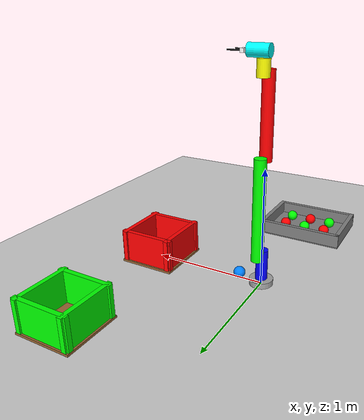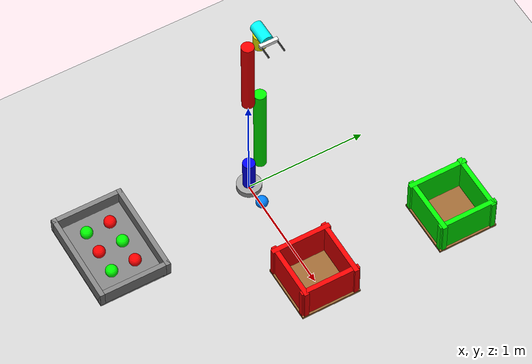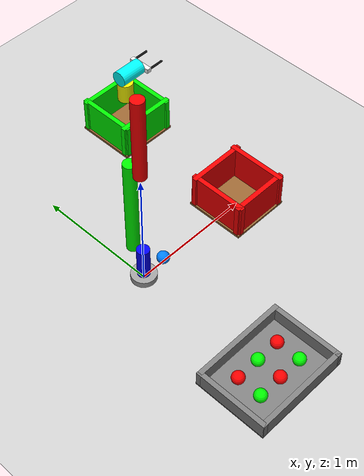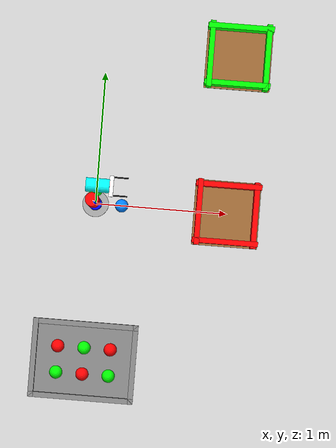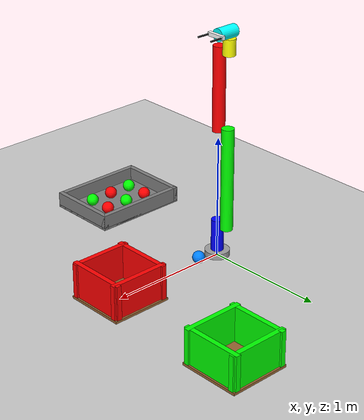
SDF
<sdf version='1.9'>
  <world name='pick_and_place_world'>
    <physics name='1ms' type='ignored'>
      <max_step_size>0.001</max_step_size>
      <real_time_factor>1</real_time_factor>
      <real_time_update_rate>1000</real_time_update_rate>
    </physics>
    <plugin name='gz::sim::systems::Physics' filename='ignition-gazebo-physics-system'/>
    <plugin name='gz::sim::systems::UserCommands' filename='ignition-gazebo-user-commands-system'/>
    <plugin name='gz::sim::systems::SceneBroadcaster' filename='ignition-gazebo-scene-broadcaster-system'/>
    <plugin name='gz::sim::systems::Contact' filename='ignition-gazebo-contact-system'/>
    <gravity>0 0 -9.8</gravity>
    <magnetic_field>6e-06 2.3e-05 -4.2e-05</magnetic_field>
    <atmosphere type='adiabatic'/>
    <scene>
      <ambient>0.4 0.4 0.4 1</ambient>
      <background>0.7 0.7 0.7 1</background>
      <shadows>true</shadows>
    </scene>

    <model name='ground_plane'>
      <static>true</static>
      <link name='link'>
        <collision name='collision'>
          <geometry>
            <plane>
              <normal>0 0 1</normal>
              <size>100 100</size>
            </plane>
          </geometry>
          <surface>
            <friction>
              <ode/>
            </friction>
            <bounce/>
            <contact/>
          </surface>
        </collision>
        <visual name='visual'>
          <geometry>
            <plane>
              <normal>0 0 1</normal>
              <size>100 100</size>
            </plane>
          </geometry>
          <material>
            <ambient>0.8 0.8 0.8 1</ambient>
            <diffuse>0.8 0.8 0.8 1</diffuse>
            <specular>0.8 0.8 0.8 1</specular>
          </material>
        </visual>
        <pose>0 0 0 0 -0 0</pose>
        <inertial>
          <pose>0 0 0 0 -0 0</pose>
          <mass>1</mass>
          <inertia>
            <ixx>1</ixx>
            <ixy>0</ixy>
            <ixz>0</ixz>
            <iyy>1</iyy>
            <iyz>0</iyz>
            <izz>1</izz>
          </inertia>
        </inertial>
        <enable_wind>false</enable_wind>
      </link>
      <pose>0 0 0 0 -0 0</pose>
      <self_collide>false</self_collide>
    </model>

    <!-- Hollow box 1 (bin) for pick-and-place -->
    <model name="bin1">
      <static>true</static>
      <!-- Base link (contains floor + walls as separate visuals/collisions) -->
      <link name="bin_link1">
        <!-- Floor -->
        <collision name="floor_collision1">
          <pose>0 0 0.01 0 0 0</pose> <!-- floor sits at z=0.01 (half of floor_thickness) -->
          <geometry>
            <box>
              <size>0.5 0.5 0.02</size> <!-- floor_thickness = 0.02 m -->
            </box>
          </geometry>
        </collision>
        <visual name="floor_visual1">
          <pose>0 0 0.01 0 0 0</pose>
          <geometry><box><size>0.5 0.5 0.02</size></box></geometry>
          <material><ambient>0.6 0.4 0.2 1</ambient><diffuse>0.6 0.4 0.2 1</diffuse></material>
        </visual>

        <!-- Walls: front, back, left, right -->
        <!-- NOTE: wall_thickness = 0.02 m, wall_height = 0.28 m (so internal height ~0.26 m) -->
        <!-- Front wall (+x direction) -->
        <collision name="wall_front_collision1">
          <pose>0.215 0 0.16 0 0 0</pose> <!-- halfX - thickness/2 = 0.25 - 0.035 => ~0.215 -->
          <geometry>
            <box>
              <size>0.04 0.5 0.28</size> <!-- thickness x depth x height -->
            </box>
          </geometry>
        </collision>
        <visual name="wall_front_visual1">
          <pose>0.215 0 0.16 0 0 0</pose>
          <geometry><box><size>0.04 0.5 0.28</size></box></geometry>
          <material><ambient>0 1 0 1</ambient><diffuse>0 1 0 1</diffuse></material>
        </visual>

        <!-- Back wall (-x direction) -->
        <collision name="wall_back_collision1">
          <pose>-0.215 0 0.16 0 0 0</pose>
          <geometry>
            <box><size>0.04 0.5 0.28</size></box>
          </geometry>
        </collision>
        <visual name="wall_back_visual1">
          <pose>-0.215 0 0.16 0 0 0</pose>
          <geometry><box><size>0.04 0.5 0.28</size></box></geometry>
          <material><ambient>0 1 0 1</ambient><diffuse>0 1 0 1</diffuse></material>
        </visual>

        <!-- Left wall (+y) -->
        <collision name="wall_left_collision1">
          <pose>0 0.215 0.16 0 0 0</pose>
          <geometry>
            <box><size>0.5 0.04 0.28</size></box>
          </geometry>
        </collision>
        <visual name="wall_left_visual1">
          <pose>0 0.215 0.16 0 0 0</pose>
          <geometry><box><size>0.5 0.04 0.28</size></box></geometry>
          <material><ambient>0 1 0 1</ambient><diffuse>0 1 0 1</diffuse></material>
        </visual>

        <!-- Right wall (-y) -->
        <collision name="wall_right_collision1">
          <pose>0 -0.215 0.16 0 0 0</pose>
          <geometry>
            <box><size>0.5 0.04 0.28</size></box>
          </geometry>
        </collision>
        <visual name="wall_right_visual1">
          <pose>0 -0.215 0.16 0 0 0</pose>
          <geometry><box><size>0.5 0.04 0.28</size></box></geometry>
          <material><ambient>0 1 0 1</ambient><diffuse>0 1 0 1</diffuse></material>
        </visual>

        <!-- recommended contact surface parameters (optional tweak) -->
        <surface>
          <friction>
            <ode/>
          </friction>
          <bounce/>
          <contact/>
        </surface>
      </link>

      <!-- Place the whole bin closer to the robot -->
      <pose>1.0 1.2 0 0 0 0</pose> <!-- x y z roll pitch yaw (meters, radians) -->
    </model>

    <!-- Hollow box 2 (bin) for pick-and-place -->
    <model name="bin2">
      <static>true</static>
      <!-- Base link (contains floor + walls as separate visuals/collisions) -->
      <link name="bin_link2">
        <!-- Floor -->
        <collision name="floor_collision2">
          <pose>0 0 0.01 0 0 0</pose> <!-- floor sits at z=0.01 (half of floor_thickness) -->
          <geometry>
            <box>
              <size>0.5 0.5 0.02</size> <!-- floor_thickness = 0.02 m -->
            </box>
          </geometry>
        </collision>
        <visual name="floor_visual2">
          <pose>0 0 0.01 0 0 0</pose>
          <geometry><box><size>0.5 0.5 0.02</size></box></geometry>
          <material><ambient>0.6 0.4 0.2 1</ambient><diffuse>0.6 0.4 0.2 1</diffuse></material>
        </visual>

        <!-- Walls: front, back, left, right -->
        <!-- NOTE: wall_thickness = 0.02 m, wall_height = 0.28 m (so internal height ~0.26 m) -->
        <!-- Front wall (+x direction) -->
        <collision name="wall_front_collision2">
          <pose>0.215 0 0.16 0 0 0</pose> <!-- halfX - thickness/2 = 0.25 - 0.035 => ~0.215 -->
          <geometry>
            <box>
              <size>0.04 0.5 0.28</size> <!-- thickness x depth x height -->
            </box>
          </geometry>
        </collision>
        <visual name="wall_front_visual2">
          <pose>0.215 0 0.16 0 0 0</pose>
          <geometry><box><size>0.04 0.5 0.28</size></box></geometry>
          <material><ambient>1 0 0 1</ambient><diffuse>1 0 0 1</diffuse></material>
        </visual>

        <!-- Back wall (-x direction) -->
        <collision name="wall_back_collision2">
          <pose>-0.215 0 0.16 0 0 0</pose>
          <geometry>
            <box><size>0.04 0.5 0.28</size></box>
          </geometry>
        </collision>
        <visual name="wall_back_visual2">
          <pose>-0.215 0 0.16 0 0 0</pose>
          <geometry><box><size>0.04 0.5 0.28</size></box></geometry>
          <material><ambient>1 0 0 1</ambient><diffuse>1 0 0 1</diffuse></material>
        </visual>

        <!-- Left wall (+y) -->
        <collision name="wall_left_collision2">
          <pose>0 0.215 0.16 0 0 0</pose>
          <geometry>
            <box><size>0.5 0.04 0.28</size></box>
          </geometry>
        </collision>
        <visual name="wall_left_visual2">
          <pose>0 0.215 0.16 0 0 0</pose>
          <geometry><box><size>0.5 0.04 0.28</size></box></geometry>
          <material><ambient>1 0 0 1</ambient><diffuse>1 0 0 1</diffuse></material>
        </visual>

        <!-- Right wall (-y) -->
        <collision name="wall_right_collision2">
          <pose>0 -0.215 0.16 0 0 0</pose>
          <geometry>
            <box><size>0.5 0.04 0.28</size></box>
          </geometry>
        </collision>
        <visual name="wall_right_visual2">
          <pose>0 -0.215 0.16 0 0 0</pose>
          <geometry><box><size>0.5 0.04 0.28</size></box></geometry>
          <material><ambient>1 0 0 1</ambient><diffuse>1 0 0 1</diffuse></material>
        </visual>

        <!-- recommended contact surface parameters (optional tweak) -->
        <surface>
          <friction>
            <ode/>
          </friction>
          <bounce/>
          <contact/>
        </surface>
      </link>

      <!-- Place the whole bin closer to the robot -->
      <pose>1.0 0 0 0 0 0</pose> <!-- x y z roll pitch yaw (meters, radians) -->
    </model>

    <!-- BIN 3: low rectangular tray (symmetrically enlarged) -->
    <model name="bin3">
      <static>true</static>
      <link name="bin3_link">

        <!-- floor: outer_x=0.8, outer_y=0.6, floor_thickness=0.02 -->
        <collision name="floor_collision3">
          <pose>0 0 0.01 0 0 0</pose>     <!-- floor sits at z = floor_thickness/2 (in model frame) -->
          <geometry>
            <box>
              <size>0.8 0.6 0.02</size>
            </box>
          </geometry>
        </collision>
        <visual name="floor_visual3">
          <pose>0 0 0.01 0 0 0</pose>
          <geometry><box><size>0.8 0.6 0.02</size></box></geometry>
          <material>
            <ambient>0.5 0.5 0.5 1</ambient>
            <diffuse>0.5 0.5 0.5 1</diffuse>
          </material>
        </visual>

        <!-- front wall (+x) -->
        <collision name="wall_front_collision3">
          <pose>0.38 0 0.07 0 0 0</pose>
          <geometry><box><size>0.04 0.6 0.12</size></box></geometry>
        </collision>
        <visual name="wall_front_visual3">
          <pose>0.38 0 0.07 0 0 0</pose>
          <geometry><box><size>0.04 0.6 0.12</size></box></geometry>
          <material><ambient>0.5 0.5 0.5 1</ambient><diffuse>0.5 0.5 0.5 1</diffuse></material>
        </visual>

        <!-- back wall (-x) -->
        <collision name="wall_back_collision3">
          <pose>-0.38 0 0.07 0 0 0</pose>
          <geometry><box><size>0.04 0.6 0.12</size></box></geometry>
        </collision>
        <visual name="wall_back_visual3">
          <pose>-0.38 0 0.07 0 0 0</pose>
          <geometry><box><size>0.04 0.6 0.12</size></box></geometry>
          <material><ambient>0.5 0.5 0.5 1</ambient><diffuse>0.5 0.5 0.5 1</diffuse></material>
        </visual>

        <!-- left wall (+y) -->
        <collision name="wall_left_collision3">
          <pose>0 0.28 0.07 0 0 0</pose>
          <geometry><box><size>0.8 0.04 0.12</size></box></geometry>
        </collision>
        <visual name="wall_left_visual3">
          <pose>0 0.28 0.07 0 0 0</pose>
          <geometry><box><size>0.8 0.04 0.12</size></box></geometry>
          <material><ambient>0.5 0.5 0.5 1</ambient><diffuse>0.5 0.5 0.5 1</diffuse></material>
        </visual>

        <!-- right wall (-y) -->
        <collision name="wall_right_collision3">
          <pose>0 -0.28 0.07 0 0 0</pose>
          <geometry><box><size>0.8 0.04 0.12</size></box></geometry>
        </collision>
        <visual name="wall_right_visual3">
          <pose>0 -0.28 0.07 0 0 0</pose>
          <geometry><box><size>0.8 0.04 0.12</size></box></geometry>
          <material><ambient>0.5 0.5 0.5 1</ambient><diffuse>0.5 0.5 0.5 1</diffuse></material>
        </visual>

        <surface>
          <friction><ode/></friction>
          <bounce/>
          <contact/>
        </surface>

      </link>

      <!-- model pose remains the same: this is the tray CENTER in world coordinates -->
      <pose>0.0 -1.2 0 0 0 3.14</pose>
    </model>

    <!-- 6 balls placed with margin from tray walls (world coordinates) -->
    <model name="ball_1_green">
      <static>false</static>
      <link name="link">
        <pose>0.2000 -1.3000 0.0700 0 0 0</pose>
        <collision name="collision"><geometry><sphere><radius>0.05</radius></sphere></geometry></collision>
        <visual name="visual">
          <geometry><sphere><radius>0.05</radius></sphere></geometry>
          <material><ambient>0 1 0 1</ambient><diffuse>0 1 0 1</diffuse></material>
        </visual>
      </link>
    </model>

    <model name="ball_2_red">
      <static>false</static>
      <link name="link">
        <pose>0.0000 -1.3000 0.0700 0 0 0</pose>
        <collision name="collision"><geometry><sphere><radius>0.05</radius></sphere></geometry></collision>
        <visual name="visual">
          <geometry><sphere><radius>0.05</radius></sphere></geometry>
          <material><ambient>1 0 0 1</ambient><diffuse>1 0 0 1</diffuse></material>
        </visual>
      </link>
    </model>

    <model name="ball_3_green">
      <static>false</static>
      <link name="link">
        <pose>-0.2000 -1.3000 0.0700 0 0 0</pose>
        <collision name="collision"><geometry><sphere><radius>0.05</radius></sphere></geometry></collision>
        <visual name="visual">
          <geometry><sphere><radius>0.05</radius></sphere></geometry>
          <material><ambient>0 1 0 1</ambient><diffuse>0 1 0 1</diffuse></material>
        </visual>
      </link>
    </model>

    <model name="ball_4_red">
      <static>false</static>
      <link name="link">
        <pose>0.2000 -1.1000 0.0700 0 0 0</pose>
        <collision name="collision"><geometry><sphere><radius>0.05</radius></sphere></geometry></collision>
        <visual name="visual">
          <geometry><sphere><radius>0.05</radius></sphere></geometry>
          <material><ambient>1 0 0 1</ambient><diffuse>1 0 0 1</diffuse></material>
        </visual>
      </link>
    </model>

    <model name="ball_5_green">
      <static>false</static>
      <link name="link">
        <pose>0.0000 -1.1000 0.0700 0 0 0</pose>
        <collision name="collision"><geometry><sphere><radius>0.05</radius></sphere></geometry></collision>
        <visual name="visual">
          <geometry><sphere><radius>0.05</radius></sphere></geometry>
          <material><ambient>0 1 0 1</ambient><diffuse>0 1 0 1</diffuse></material>
        </visual>
      </link>
    </model>

    <model name="ball_6_red">
      <static>false</static>
      <link name="link">
        <pose>-0.2000 -1.1000 0.0700 0 0 0</pose>
        <collision name="collision"><geometry><sphere><radius>0.05</radius></sphere></geometry></collision>
        <visual name="visual">
          <geometry><sphere><radius>0.05</radius></sphere></geometry>
          <material><ambient>1 0 0 1</ambient><diffuse>1 0 0 1</diffuse></material>
        </visual>
      </link>
    </model>

    <!-- Random ball -->
    <model name='blue_ball'>
      <static>false</static>
      <link name='link'>
        <pose>0.2 0 0.05 0 0 0</pose>
        <collision name='collision'>
          <geometry>
            <sphere>
              <radius>0.05</radius>
            </sphere>
          </geometry>
        </collision>
        <visual name='visual'>
          <geometry>
            <sphere>
              <radius>0.05</radius>
            </sphere>
          </geometry>
          <material>
            <ambient>0 0.5 1 1</ambient>
            <diffuse>0 0.5 1 1</diffuse>
          </material>
        </visual>
      </link>
    </model>

    Your existing robot model (unchanged content below)
    <model name='robot_6dof_arm'>
      <joint name='fixed_base_joint' type='fixed'>
        <pose>0 0 0 0 -0 0</pose>
        <parent>world</parent>
        <child>base_link</child>
      </joint>
      <link name='base_link'>
        <pose>0 0 0 0 -0 0</pose>
        <inertial>
          <pose>0 0 0 0 -0 0</pose>
          <mass>5</mass>
          <inertia>
            <ixx>0.013542</ixx>
            <ixy>0</ixy>
            <ixz>0</ixz>
            <iyy>0.013542</iyy>
            <iyz>0</iyz>
            <izz>0.025000000000000001</izz>
          </inertia>
        </inertial>
        <collision name='base_link_collision'>
          <pose>0 0 0.025 0 0 0</pose>
          <geometry>
            <cylinder>
              <length>0.050000000000000003</length>
              <radius>0.10000000000000001</radius>
            </cylinder>
          </geometry>
          <surface>
            <friction>
              <ode/>
            </friction>
            <bounce/>
            <contact/>
          </surface>
        </collision>
        <visual name='base_link_visual'>
          <pose>0 0 0.025 0 0 0</pose>
          <geometry>
            <cylinder>
              <length>0.050000000000000003</length>
              <radius>0.10000000000000001</radius>
            </cylinder>
          </geometry>
          <material>
            <diffuse>0.625 0.625 0.625 1</diffuse>
            <ambient>0.625 0.625 0.625 1</ambient>
          </material>
        </visual>
        <enable_wind>false</enable_wind>
      </link>
      <joint name='base_link_link1' type='revolute'>
        <pose>0 0 0 0 -0 0</pose>
        <parent>base_link</parent>
        <child>link_1</child>
        <axis>
          <xyz>0 0 1</xyz>
          <limit>
            <lower>-3.1415899999999999</lower>
            <upper>3.1415899999999999</upper>
            <effort>50</effort>
            <velocity>1000</velocity>
            <stiffness>100000000</stiffness>
            <dissipation>1</dissipation>
          </limit>
          <dynamics>
            <spring_reference>0</spring_reference>
            <spring_stiffness>0</spring_stiffness>
            <damping>0</damping>
            <friction>0</friction>
          </dynamics>
        </axis>
      </joint>
      <link name='link_1'>
        <pose>0 0 0.05 0 -0 1e-06</pose>
        <inertial>
          <pose>0 0 0 0 -0 0</pose>
          <mass>2</mass>
          <inertia>
            <ixx>0.012866000000000001</ixx>
            <ixy>0</ixy>
            <ixz>0</ixz>
            <iyy>0.012866000000000001</iyy>
            <iyz>0</iyz>
            <izz>0.0025000000000000001</izz>
          </inertia>
        </inertial>
        <collision name='link_1_collision'>
          <pose>0 0 0.132 0 0 0</pose>
          <geometry>
            <cylinder>
              <length>0.26400000000000001</length>
              <radius>0.050000000000000003</radius>
            </cylinder>
          </geometry>
          <surface>
            <friction>
              <ode/>
            </friction>
            <bounce/>
            <contact/>
          </surface>
        </collision>
        <visual name='link_1_visual'>
          <pose>0 0 0.132 0 0 0</pose>
          <geometry>
            <cylinder>
              <length>0.26400000000000001</length>
              <radius>0.050000000000000003</radius>
            </cylinder>
          </geometry>
          <material>
            <diffuse>0 0 1 1</diffuse>
            <ambient>0 0 1 1</ambient>
          </material>
        </visual>
        <enable_wind>false</enable_wind>
      </link>
      <joint name='link1_link2' type='revolute'>
        <pose>0 0 0 0 -0 0</pose>
        <parent>link_1</parent>
        <child>link_2</child>
        <axis>
          <xyz>0 1 0</xyz>
          <limit>
            <lower>-2.5</lower>
            <upper>2.5</upper>
            <effort>50</effort>
            <velocity>1000</velocity>
            <stiffness>100000000</stiffness>
            <dissipation>1</dissipation>
          </limit>
          <dynamics>
            <spring_reference>0</spring_reference>
            <spring_stiffness>0</spring_stiffness>
            <damping>0</damping>
            <friction>0</friction>
          </dynamics>
        </axis>
      </joint>
      <link name='link_2'>
        <pose>-0 0.1 0.264 -0 -0 1e-06</pose>
        <inertial>
          <pose>0 0 0 0 -0 0</pose>
          <mass>3</mass>
          <inertia>
            <ixx>0.1825</ixx>
            <ixy>0</ixy>
            <ixz>0</ixz>
            <iyy>0.1825</iyy>
            <iyz>0</iyz>
            <izz>0.0037499999999999999</izz>
          </inertia>
        </inertial>
        <collision name='link_2_collision'>
          <pose>0 0 0.425 0 0 0</pose>
          <geometry>
            <cylinder>
              <length>0.84999999999999998</length>
              <radius>0.050000000000000003</radius>
            </cylinder>
          </geometry>
          <surface>
            <friction>
              <ode/>
            </friction>
            <bounce/>
            <contact/>
          </surface>
        </collision>
        <visual name='link_2_visual'>
          <pose>0 0 0.425 0 0 0</pose>
          <geometry>
            <cylinder>
              <length>0.84999999999999998</length>
              <radius>0.050000000000000003</radius>
            </cylinder>
          </geometry>
          <material>
            <diffuse>0 1 0 1</diffuse>
            <ambient>0 1 0 1</ambient>
          </material>
        </visual>
        <enable_wind>false</enable_wind>
      </link>
      <joint name='link2_link3' type='revolute'>
        <pose>0 0 0 0 -0 0</pose>
        <parent>link_2</parent>
        <child>link_3</child>
        <axis>
          <xyz>0 1 0</xyz>
          <limit>
            <lower>-3.1400000000000001</lower>
            <upper>3.1400000000000001</upper>
            <effort>50</effort>
            <velocity>1000</velocity>
            <stiffness>100000000</stiffness>
            <dissipation>1</dissipation>
          </limit>
          <dynamics>
            <spring_reference>0</spring_reference>
            <spring_stiffness>0</spring_stiffness>
            <damping>0</damping>
            <friction>0</friction>
          </dynamics>
        </axis>
      </joint>
      <link name='link_3'>
        <pose>-0 -0 1.064 0 -3e-06 1e-06</pose>
        <inertial>
          <pose>0 0 0 0 -0 0</pose>
          <mass>2.5</mass>
          <inertia>
            <ixx>0.097895999999999997</ixx>
            <ixy>0</ixy>
            <ixz>0</ixz>
            <iyy>0.097895999999999997</iyy>
            <iyz>0</iyz>
            <izz>0.0031250000000000002</izz>
          </inertia>
        </inertial>
        <collision name='link_3_collision'>
          <pose>0 0 0.34 0 0 0</pose>
          <geometry>
            <cylinder>
              <length>0.68000000000000005</length>
              <radius>0.050000000000000003</radius>
            </cylinder>
          </geometry>
          <surface>
            <friction>
              <ode/>
            </friction>
            <bounce/>
            <contact/>
          </surface>
        </collision>
        <visual name='link_3_visual'>
          <pose>0 0 0.34 0 0 0</pose>
          <geometry>
            <cylinder>
              <length>0.68000000000000005</length>
              <radius>0.050000000000000003</radius>
            </cylinder>
          </geometry>
          <material>
            <diffuse>1 0 0 1</diffuse>
            <ambient>1 0 0 1</ambient>
          </material>
        </visual>
        <enable_wind>false</enable_wind>
      </link>
      <joint name='link3_link4' type='revolute'>
        <pose>0 0 0 0 -0 0</pose>
        <parent>link_3</parent>
        <child>link_4</child>
        <axis>
          <xyz>0 1 0</xyz>
          <limit>
            <lower>-3.1400000000000001</lower>
            <upper>3.1400000000000001</upper>
            <effort>50</effort>
            <velocity>1000</velocity>
            <stiffness>100000000</stiffness>
            <dissipation>1</dissipation>
          </limit>
          <dynamics>
            <spring_reference>0</spring_reference>
            <spring_stiffness>0</spring_stiffness>
            <damping>0</damping>
            <friction>0</friction>
          </dynamics>
        </axis>
      </joint>
      <link name='link_4'>
        <pose>-2e-06 0.1 1.694 0 2.3e-05 1e-06</pose>
        <inertial>
          <pose>0 0 0 0 -0 0</pose>
          <mass>1.5</mass>
          <inertia>
            <ixx>0.0030500000000000002</ixx>
            <ixy>0</ixy>
            <ixz>0</ixz>
            <iyy>0.0030500000000000002</iyy>
            <iyz>0</iyz>
            <izz>0.0018749999999999999</izz>
          </inertia>
        </inertial>
        <collision name='link_4_collision'>
          <pose>0 0 0.065 0 0 0</pose>
          <geometry>
            <cylinder>
              <length>0.13</length>
              <radius>0.050000000000000003</radius>
            </cylinder>
          </geometry>
          <surface>
            <friction>
              <ode/>
            </friction>
            <bounce/>
            <contact/>
          </surface>
        </collision>
        <visual name='link_4_visual'>
          <pose>0 0 0.065 0 0 0</pose>
          <geometry>
            <cylinder>
              <length>0.13</length>
              <radius>0.050000000000000003</radius>
            </cylinder>
          </geometry>
          <material>
            <diffuse>1 1 0 1</diffuse>
            <ambient>1 1 0 1</ambient>
          </material>
        </visual>
        <enable_wind>false</enable_wind>
      </link>
      <joint name='link4_link5' type='revolute'>
        <pose>0 0 0 0 -0 0</pose>
        <parent>link_4</parent>
        <child>link_5</child>
        <axis>
          <xyz>1 0 0</xyz>
          <limit>
            <lower>-3.1400000000000001</lower>
            <upper>3.1400000000000001</upper>
            <effort>50</effort>
            <velocity>1000</velocity>
            <stiffness>100000000</stiffness>
            <dissipation>1</dissipation>
          </limit>
          <dynamics>
            <spring_reference>0</spring_reference>
            <spring_stiffness>0</spring_stiffness>
            <damping>0</damping>
            <friction>0</friction>
          </dynamics>
        </axis>
      </joint>
      <link name='link_5'>
        <pose>2e-06 0.1 1.874 1e-06 1.57002 1e-06</pose>
        <inertial>
          <pose>0 0 0 0 -0 0</pose>
          <mass>1</mass>
          <inertia>
            <ixx>0.0030330000000000001</ixx>
            <ixy>0</ixy>
            <ixz>0</ixz>
            <iyy>0.0030330000000000001</iyy>
            <iyz>0</iyz>
            <izz>0.00125</izz>
          </inertia>
        </inertial>
        <collision name='link_5_collision'>
          <pose>0 0 0.035 0 0 0</pose>
          <geometry>
            <cylinder>
              <length>0.17000000000000001</length>
              <radius>0.050000000000000003</radius>
            </cylinder>
          </geometry>
          <surface>
            <friction>
              <ode/>
            </friction>
            <bounce/>
            <contact/>
          </surface>
        </collision>
        <visual name='link_5_visual'>
          <pose>0 0 0.035 0 0 0</pose>
          <geometry>
            <cylinder>
              <length>0.17000000000000001</length>
              <radius>0.050000000000000003</radius>
            </cylinder>
          </geometry>
          <material>
            <diffuse>0 1 1 1</diffuse>
            <ambient>0 1 1 1</ambient>
          </material>
        </visual>
        <enable_wind>false</enable_wind>
      </link>
      <joint name='link5_tcp_connector' type='revolute'>
        <pose>0 0 0 0 -0 0</pose>
        <parent>link_5</parent>
        <child>tcp_connector</child>
        <axis>
          <xyz>0 0 1</xyz>
          <limit>
            <lower>-3.1400000000000001</lower>
            <upper>3.1400000000000001</upper>
            <effort>50</effort>
            <velocity>1000</velocity>
            <stiffness>100000000</stiffness>
            <dissipation>1</dissipation>
          </limit>
          <dynamics>
            <spring_reference>0</spring_reference>
            <spring_stiffness>0</spring_stiffness>
            <damping>0</damping>
            <friction>0</friction>
          </dynamics>
        </axis>
      </joint>
      <link name='tcp_connector'>
        <pose>0.120002 0.1 1.87409 -0 1.57002 -0</pose>
        <inertial>
          <pose>0 0 0 0 -0 0</pose>
          <mass>0.5</mass>
          <inertia>
            <ixx>0.00097499999999999996</ixx>
            <ixy>0</ixy>
            <ixz>0</ixz>
            <iyy>7.4999999999999993e-05</iyy>
            <iyz>0</iyz>
            <izz>0.00097499999999999996</izz>
          </inertia>
        </inertial>
        <collision name='tcp_connector_collision'>
          <pose>0 0 0.0125 0 0 0</pose>
          <geometry>
            <box>
              <size>0.03 0.15 0.03</size>
            </box>
          </geometry>
          <surface>
            <friction>
              <ode/>
            </friction>
            <bounce/>
            <contact/>
          </surface>
        </collision>
        <visual name='tcp_connector_visual'>
          <pose>0 0 0.0125 0 0 0</pose>
          <geometry>
            <box>
              <size>0.03 0.15 0.03</size>
            </box>
          </geometry>
          <material>
            <diffuse>1 1 1 1</diffuse>
            <ambient>1 1 1 1</ambient>
          </material>
        </visual>
        <enable_wind>false</enable_wind>
      </link>
      <joint name='tcp_connector_gripper_left' type='prismatic'>
        <pose>-0 0 0 0 -0 0</pose>
        <parent>tcp_connector</parent>
        <child>gripper_left</child>
        <axis>
          <xyz>0 1 0</xyz>
          <limit>
            <lower>-0.055</lower>
            <upper>0</upper>
            <effort>50</effort>
            <velocity>1000</velocity>
            <stiffness>100000000</stiffness>
            <dissipation>1</dissipation>
          </limit>
          <dynamics>
            <spring_reference>0</spring_reference>
            <spring_stiffness>0</spring_stiffness>
            <damping>0</damping>
            <friction>0</friction>
          </dynamics>
        </axis>
      </joint>
      <link name='gripper_left'>
        <pose>0.150002 0.165 1.87412 -0 1.57002 -0</pose>
        <inertial>
          <pose>0 0 0 0 -0 0</pose>
          <mass>0.20000000000000001</mass>
          <inertia>
            <ixx>0.00016799999999999999</ixx>
            <ixy>0</ixy>
            <ixz>0</ixz>
            <iyy>0.00016799999999999999</iyy>
            <iyz>0</iyz>
            <izz>3.0000000000000001e-06</izz>
          </inertia>
        </inertial>
        <collision name='gripper_left_collision'>
          <pose>0 0 0.05 0 0 0</pose>
          <geometry>
            <box>
              <size>0.01 0.01 0.1</size>
            </box>
          </geometry>
          <surface>
            <friction>
              <ode/>
            </friction>
            <bounce/>
            <contact/>
          </surface>
        </collision>
        <visual name='gripper_left_visual'>
          <pose>0 0 0.05 0 0 0</pose>
          <geometry>
            <box>
              <size>0.01 0.01 0.1</size>
            </box>
          </geometry>
          <material>
            <diffuse>0 0 0 1</diffuse>
            <ambient>0 0 0 1</ambient>
          </material>
        </visual>
        <enable_wind>false</enable_wind>
      </link>
      <joint name='tcp_connector_gripper_right' type='prismatic'>
        <pose>-0 0 0 0 -0 0</pose>
        <parent>tcp_connector</parent>
        <child>gripper_right</child>
        <axis>
          <xyz>0 1 0</xyz>
          <limit>
            <lower>0</lower>
            <upper>0.055</upper>
            <effort>50</effort>
            <velocity>1000</velocity>
            <stiffness>100000000</stiffness>
            <dissipation>1</dissipation>
          </limit>
          <dynamics>
            <spring_reference>0</spring_reference>
            <spring_stiffness>0</spring_stiffness>
            <damping>0</damping>
            <friction>0</friction>
          </dynamics>
        </axis>
      </joint>
      <link name='gripper_right'>
        <pose>0.150002 0.035 1.87412 -0 1.57002 -0</pose>
        <inertial>
          <pose>0 0 0 0 -0 0</pose>
          <mass>0.20000000000000001</mass>
          <inertia>
            <ixx>0.00016799999999999999</ixx>
            <ixy>0</ixy>
            <ixz>0</ixz>
            <iyy>0.00016799999999999999</iyy>
            <iyz>0</iyz>
            <izz>3.0000000000000001e-06</izz>
          </inertia>
        </inertial>
        <collision name='gripper_right_collision'>
          <pose>0 0 0.05 0 0 0</pose>
          <geometry>
            <box>
              <size>0.01 0.01 0.1</size>
            </box>
          </geometry>
          <surface>
            <friction>
              <ode/>
            </friction>
            <bounce/>
            <contact/>
          </surface>
        </collision>
        <visual name='gripper_right_visual'>
          <pose>0 0 0.05 0 0 0</pose>
          <geometry>
            <box>
              <size>0.01 0.01 0.1</size>
            </box>
          </geometry>
          <material>
            <diffuse>0 0 0 1</diffuse>
            <ambient>0 0 0 1</ambient>
          </material>
        </visual>
        <enable_wind>false</enable_wind>
      </link>
      <plugin name='gz_ros2_control::GazeboSimROS2ControlPlugin' filename='gz_ros2_control-system'>
        <parameters>/home/harshitji/robotic_arm_ws/install/robot_description/share/robot_description/config/controllers.yaml</parameters>
      </plugin>
      <initial_position xyz='0 0 0'/>
      <pose>0 0 0 0 -0 0</pose>
      <static>false</static>
      <self_collide>false</self_collide>
    </model>

    <light name='sun' type='directional'>
      <pose>0 0 10 0 -0 0</pose>
      <cast_shadows>true</cast_shadows>
      <intensity>1</intensity>
      <direction>-0.5 0.1 -0.9</direction>
      <diffuse>0.8 0.8 0.8 1</diffuse>
      <specular>0.2 0.2 0.2 1</specular>
      <attenuation>
        <range>1000</range>
        <linear>0.01</linear>
        <constant>0.90000000000000002</constant>
        <quadratic>0.001</quadratic>
      </attenuation>
      <spot>
        <inner_angle>0</inner_angle>
        <outer_angle>0</outer_angle>
        <falloff>0</falloff>
      </spot>
    </light>
  </world>
</sdf>
